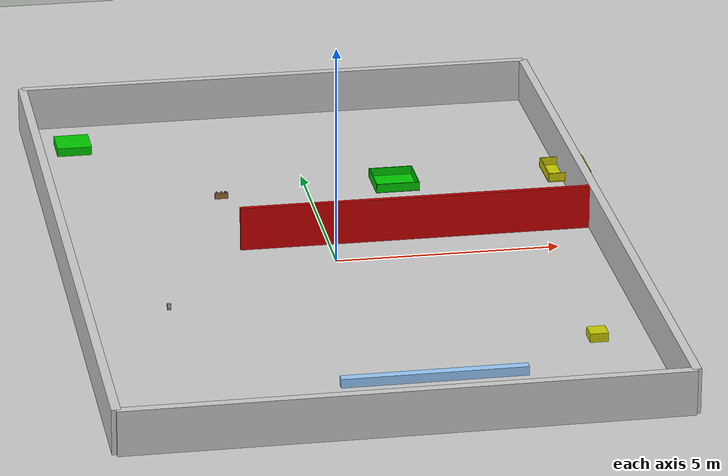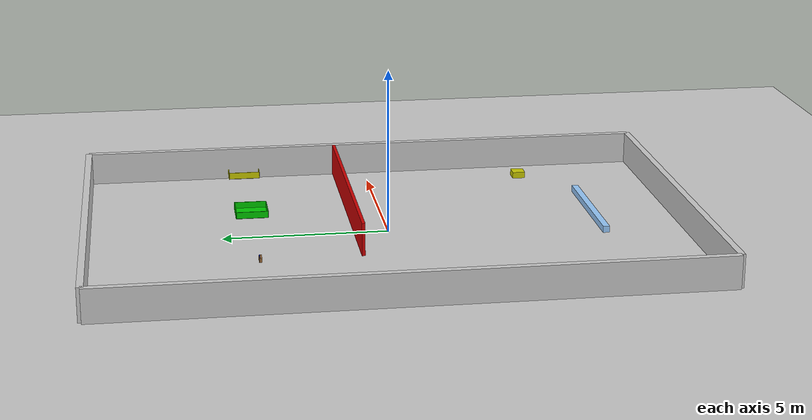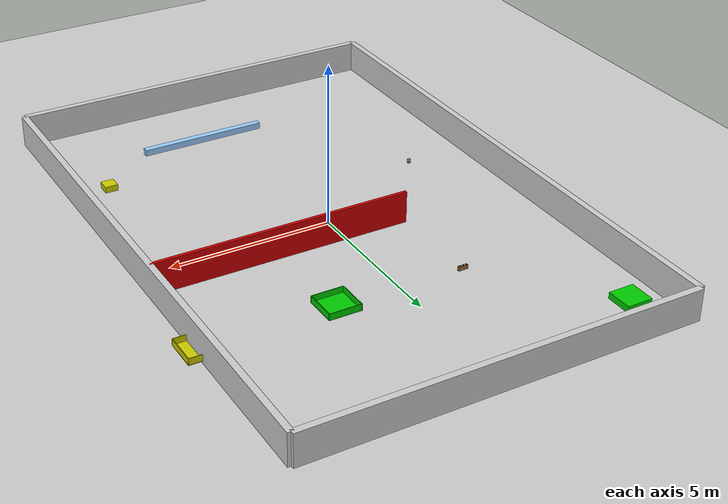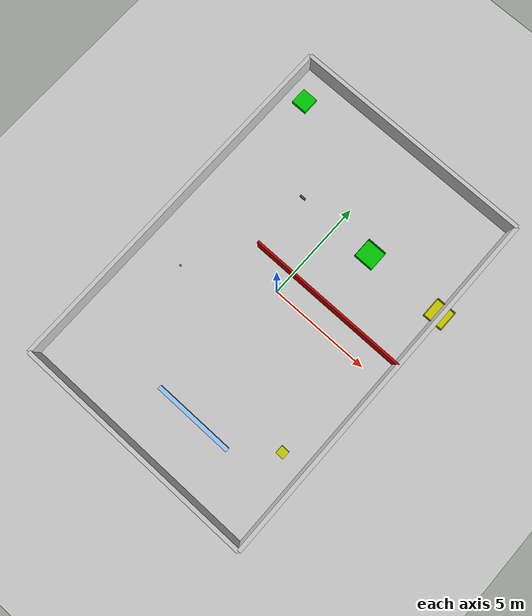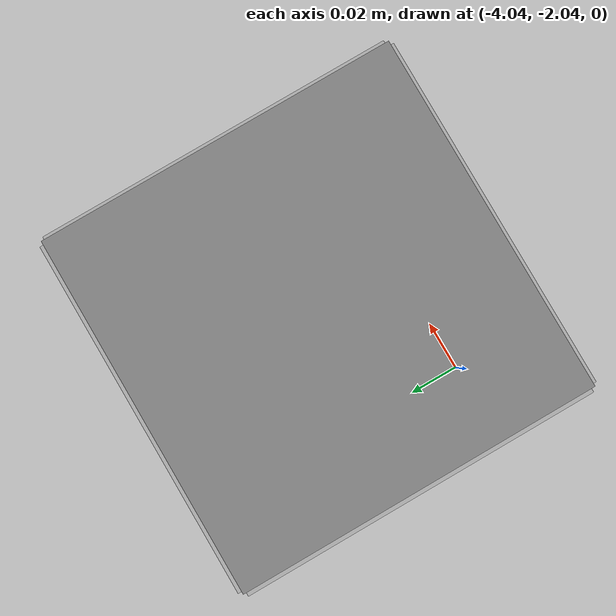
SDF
<?xml version="1.0" ?>
<sdf version="1.6">
  <world name="lab_world">
    <physics type="ode">
      <max_step_size>0.001</max_step_size>
      <real_time_factor>1</real_time_factor>
      <real_time_update_rate>1000</real_time_update_rate>
      <ode>
        <solver>
          <type>quick</type>
          <iters>200</iters>
          <sor>1.3</sor>
        </solver>
      </ode>
    </physics>
    <plugin name="gazebo_ros_state" filename="libgazebo_ros_state.so">
      <ros>
        <namespace>/</namespace>
      </ros>
      <update_rate>50.0</update_rate>
    </plugin>
    <include>
      <uri>model://ground_plane</uri>
    </include>
    <include>
      <uri>model://sun</uri>
    </include>
    <scene>
      <ambient>0.4 0.4 0.4 1</ambient>
      <background>0.7 0.7 0.7 1</background>
      <shadows>true</shadows>
    </scene>
    <model name="wall_north">
      <static>true</static>
      <pose>0 9 0.5 0 0 0</pose>
      <link name="link">
        <collision name="collision">
          <geometry><box><size>12 0.2 1</size></box></geometry>
        </collision>
        <visual name="visual">
          <geometry><box><size>12 0.2 1</size></box></geometry>
          <material>
            <ambient>0.8 0.8 0.8 1</ambient>
            <diffuse>0.8 0.8 0.8 1</diffuse>
            <specular>0.1 0.1 0.1 1</specular>
          </material>
        </visual>
      </link>
    </model>
    <model name="wall_south">
      <static>true</static>
      <pose>0 -9 0.5 0 0 0</pose>
      <link name="link">
        <collision name="collision">
          <geometry><box><size>12 0.2 1</size></box></geometry>
        </collision>
        <visual name="visual">
          <geometry><box><size>12 0.2 1</size></box></geometry>
          <material>
            <ambient>0.8 0.8 0.8 1</ambient>
            <diffuse>0.8 0.8 0.8 1</diffuse>
            <specular>0.1 0.1 0.1 1</specular>
          </material>
        </visual>
      </link>
    </model>

    <model name="green_station">
      <static>true</static>
      <pose>2.0 4.0 0.1 0 0 0</pose>
      <link name="base">
        <visual name="v_floor"><pose>0 0 0 0 0 0</pose><geometry><box><size>1.0 1.0 0.02</size></box></geometry><material><ambient>0 0.8 0 1</ambient><diffuse>0 0.8 0 1</diffuse></material></visual>
        <collision name="c_floor"><pose>0 0 0 0 0 0</pose><geometry><box><size>1.0 1.0 0.02</size></box></geometry></collision>
        <visual name="v_n"><pose>0 0.49 0.1 0 0 0</pose><geometry><box><size>1.0 0.02 0.2</size></box></geometry><material><ambient>0 0.8 0 1</ambient><diffuse>0 0.8 0 1</diffuse></material></visual>
        <collision name="c_n"><pose>0 0.49 0.1 0 0 0</pose><geometry><box><size>1.0 0.02 0.2</size></box></geometry></collision>
        <visual name="v_s"><pose>0 -0.49 0.1 0 0 0</pose><geometry><box><size>1.0 0.02 0.2</size></box></geometry><material><ambient>0 0.8 0 1</ambient><diffuse>0 0.8 0 1</diffuse></material></visual>
        <collision name="c_s"><pose>0 -0.49 0.1 0 0 0</pose><geometry><box><size>1.0 0.02 0.2</size></box></geometry></collision>
        <visual name="v_e"><pose>0.49 0 0.1 0 0 0</pose><geometry><box><size>0.02 1.0 0.2</size></box></geometry><material><ambient>0 0.8 0 1</ambient><diffuse>0 0.8 0 1</diffuse></material></visual>
        <collision name="c_e"><pose>0.49 0 0.1 0 0 0</pose><geometry><box><size>0.02 1.0 0.2</size></box></geometry></collision>
        <visual name="v_w"><pose>-0.49 0 0.1 0 0 0</pose><geometry><box><size>0.02 1.0 0.2</size></box></geometry><material><ambient>0 0.8 0 1</ambient><diffuse>0 0.8 0 1</diffuse></material></visual>
        <collision name="c_w"><pose>-0.49 0 0.1 0 0 0</pose><geometry><box><size>0.02 1.0 0.2</size></box></geometry></collision>
      </link>
    </model>

    <model name="yellow_station">
      <static>true</static>
      <pose>6.0 4.0 0.1 0 0 0</pose>
      <link name="base">
        <visual name="v_floor"><pose>0 0 0 0 0 0</pose><geometry><box><size>1.0 1.0 0.02</size></box></geometry><material><ambient>0.8 0.8 0 1</ambient><diffuse>0.8 0.8 0 1</diffuse></material></visual>
        <collision name="c_floor"><pose>0 0 0 0 0 0</pose><geometry><box><size>1.0 1.0 0.02</size></box></geometry></collision>
        <visual name="v_n"><pose>0 0.49 0.1 0 0 0</pose><geometry><box><size>1.0 0.02 0.2</size></box></geometry><material><ambient>0.8 0.8 0 1</ambient><diffuse>0.8 0.8 0 1</diffuse></material></visual>
        <collision name="c_n"><pose>0 0.49 0.1 0 0 0</pose><geometry><box><size>1.0 0.02 0.2</size></box></geometry></collision>
        <visual name="v_s"><pose>0 -0.49 0.1 0 0 0</pose><geometry><box><size>1.0 0.02 0.2</size></box></geometry><material><ambient>0.8 0.8 0 1</ambient><diffuse>0.8 0.8 0 1</diffuse></material></visual>
        <collision name="c_s"><pose>0 -0.49 0.1 0 0 0</pose><geometry><box><size>1.0 0.02 0.2</size></box></geometry></collision>
        <visual name="v_e"><pose>0.49 0 0.1 0 0 0</pose><geometry><box><size>0.02 1.0 0.2</size></box></geometry><material><ambient>0.8 0.8 0 1</ambient><diffuse>0.8 0.8 0 1</diffuse></material></visual>
        <collision name="c_e"><pose>0.49 0 0.1 0 0 0</pose><geometry><box><size>0.02 1.0 0.2</size></box></geometry></collision>
        <visual name="v_w"><pose>-0.49 0 0.1 0 0 0</pose><geometry><box><size>0.02 1.0 0.2</size></box></geometry><material><ambient>0.8 0.8 0 1</ambient><diffuse>0.8 0.8 0 1</diffuse></material></visual>
        <collision name="c_w"><pose>-0.49 0 0.1 0 0 0</pose><geometry><box><size>0.02 1.0 0.2</size></box></geometry></collision>
      </link>
    </model>

    <model name="wall_east">
      <static>true</static>
      <pose>6 0 0.5 0 0 0</pose>
      <link name="link">
        <collision name="collision">
          <geometry><box><size>0.2 18 1</size></box></geometry>
        </collision>
        <visual name="visual">
          <geometry><box><size>0.2 18 1</size></box></geometry>
          <material>
            <ambient>0.8 0.8 0.8 1</ambient>
            <diffuse>0.8 0.8 0.8 1</diffuse>
            <specular>0.1 0.1 0.1 1</specular>
          </material>
        </visual>
      </link>
    </model>
    <model name="wall_west">
      <static>true</static>
      <pose>-6 0 0.5 0 0 0</pose>
      <link name="link">
        <collision name="collision">
          <geometry><box><size>0.2 18 1</size></box></geometry>
        </collision>
        <visual name="visual">
          <geometry><box><size>0.2 18 1</size></box></geometry>
          <material>
            <ambient>0.8 0.8 0.8 1</ambient>
            <diffuse>0.8 0.8 0.8 1</diffuse>
            <specular>0.1 0.1 0.1 1</specular>
          </material>
        </visual>
      </link>
    </model>
    <model name="divider_partition_red">
      <static>true</static>
      <pose>2 1 0.5 0 0 0</pose>
      <link name="link">
        <collision name="collision">
          <geometry><box><size>8 0.1 1</size></box></geometry>
        </collision>
        <visual name="visual">
          <geometry><box><size>8 0.1 1</size></box></geometry>
          <material>
            <ambient>1 0 0 1</ambient>
            <diffuse>0.8 0 0 1</diffuse>
            <specular>0.1 0 0 1</specular>
          </material>
        </visual>
      </link>
    </model>
    <model name="station_a_assembly">
      <static>true</static>
      <pose>-5.0 7.5 0.1 0 0 0</pose>
      <link name="link">
        <collision name="collision">
          <geometry><box><size>0.8 0.8 0.2</size></box></geometry>
        </collision>
        <visual name="visual">
          <geometry><box><size>0.8 0.8 0.2</size></box></geometry>
          <material>
            <ambient>0 1 0 1</ambient>
            <diffuse>0 0.8 0 1</diffuse>
            <specular>0 0.1 0 1</specular>
          </material>
        </visual>
      </link>
    </model>
    <model name="storage_parts">
      <static>true</static>
      <pose>4.8 -5 0.1 0 0 0</pose>
      <link name="link">
        <collision name="collision">
          <geometry><box><size>0.4 0.4 0.2</size></box></geometry>
        </collision>
        <visual name="visual">
          <geometry><box><size>0.4 0.4 0.2</size></box></geometry>
          <material>
            <ambient>1 1 0 1</ambient>
            <diffuse>0.8 0.8 0 1</diffuse>
            <specular>0.1 0.1 0 1</specular>
          </material>
        </visual>
      </link>
    </model>
    <model name="counter_light_blue">
      <static>true</static>
      <pose>1 -6.5 0.1 0 0 0</pose>
      <link name="link">
        <collision name="collision">
          <geometry><box><size>4 0.2 0.2</size></box></geometry>
        </collision>
        <visual name="visual">
          <geometry><box><size>4 0.2 0.2</size></box></geometry>
          <material>
            <ambient>0.6 0.8 1 1</ambient>
            <diffuse>0.6 0.8 1 1</diffuse>
            <specular>0.1 0.1 0.1 1</specular>
          </material>
        </visual>
      </link>
    </model>
    <model name='pickup_table'>
      <static>1</static>
      <pose>-2 4 0.065 0 0 0</pose>
      <link name='link'>
        <collision name='col'>
          <geometry><box><size>0.3 0.08 0.13</size></box></geometry>
        </collision>
        <visual name='vis'>
          <geometry><box><size>0.3 0.08 0.13</size></box></geometry>
          <material>
            <ambient>0.6 0.4 0.2 1</ambient>
            <diffuse>0.6 0.4 0.2 1</diffuse>
          </material>
        </visual>
        <self_collide>0</self_collide>
      </link>
    </model>

    <model name='place_table'>
      <static>1</static>
      <pose>-4 -2 0 0 0 0</pose>
      <link name='body'>
        <pose>0 0 0.065 0 0 0</pose>
        <collision name='col'>
          <geometry><box><size>0.08 0.08 0.13</size></box></geometry>
        </collision>
        <visual name='vis'>
          <geometry><box><size>0.08 0.08 0.13</size></box></geometry>
          <material>
            <ambient>0.55 0.55 0.55 1</ambient>
            <diffuse>0.55 0.55 0.55 1</diffuse>
            <specular>0.1 0.1 0.1 1</specular>
          </material>
        </visual>
        <self_collide>0</self_collide>
      </link>
      <link name='tag_north'>
        <pose>0 0.041 0.0875 0 0 0</pose>
        <visual name='vis'>
          <geometry><box><size>0.08 0.001 0.08</size></box></geometry>
          <material>
            <script>
              <uri>model://limo_car/media/materials/scripts/apriltag.material</uri>
              <uri>model://limo_car/media/materials/textures/</uri>
              <name>AprilTag_0</name>
            </script>
          </material>
        </visual>
        <self_collide>0</self_collide>
      </link>
      <link name='tag_south'>
        <pose>0 -0.041 0.0875 0 0 3.14159</pose>
        <visual name='vis'>
          <geometry><box><size>0.08 0.001 0.08</size></box></geometry>
          <material>
            <script>
              <uri>model://limo_car/media/materials/scripts/apriltag.material</uri>
              <uri>model://limo_car/media/materials/textures/</uri>
              <name>AprilTag_1</name>
            </script>
          </material>
        </visual>
        <self_collide>0</self_collide>
      </link>
      <link name='tag_east'>
        <pose>0.041 0 0.0875 0 0 -1.5708</pose>
        <visual name='vis'>
          <geometry><box><size>0.08 0.001 0.08</size></box></geometry>
          <material>
            <script>
              <uri>model://limo_car/media/materials/scripts/apriltag.material</uri>
              <uri>model://limo_car/media/materials/textures/</uri>
              <name>AprilTag_2</name>
            </script>
          </material>
        </visual>
        <self_collide>0</self_collide>
      </link>
      <link name='tag_west'>
        <pose>-0.041 0 0.0875 0 0 1.5708</pose>
        <visual name='vis'>
          <geometry><box><size>0.08 0.001 0.08</size></box></geometry>
          <material>
            <script>
              <uri>model://limo_car/media/materials/scripts/apriltag.material</uri>
              <uri>model://limo_car/media/materials/textures/</uri>
              <name>AprilTag_3</name>
            </script>
          </material>
        </visual>
        <self_collide>0</self_collide>
      </link>
    </model>

    <model name='stack_box_0'>
      <pose>-2.00 4.02 0.14235 0 0 0</pose>
      <link name='link'>
        <inertial>
          <mass>0.04</mass>
          <inertia>
            <ixx>4.067e-06</ixx><ixy>0</ixy><ixz>0</ixz>
            <iyy>4.067e-06</iyy><iyz>0</iyz>
            <izz>4.067e-06</izz>
          </inertia>
        </inertial>
        <collision name='col'>
          <geometry><box><size>0.0247 0.0247 0.0247</size></box></geometry>
          <surface>
            <friction>
              <ode><mu>1.0</mu><mu2>1.0</mu2></ode>
            </friction>
            <contact>
              <ode>
                <kp>1e6</kp>
                <kd>1.0</kd>
                <max_vel>0.01</max_vel>
                <min_depth>0.001</min_depth>
              </ode>
            </contact>
          </surface>
        </collision>
        <visual name='vis'>
          <geometry><box><size>0.0247 0.0247 0.0247</size></box></geometry>
          <material>
            <ambient>0 0 1 1</ambient>
            <diffuse>0 0.2 1 1</diffuse>
          </material>
        </visual>
        <self_collide>0</self_collide>
      </link>
    </model>

    <model name='stack_box_1'>
      <pose>-2.10 4.02 0.14235 0 0 0</pose>
      <link name='link'>
        <inertial>
          <mass>0.04</mass>
          <inertia>
            <ixx>4.067e-06</ixx><ixy>0</ixy><ixz>0</ixz>
            <iyy>4.067e-06</iyy><iyz>0</iyz>
            <izz>4.067e-06</izz>
          </inertia>
        </inertial>
        <collision name='col'>
          <geometry><box><size>0.0247 0.0247 0.0247</size></box></geometry>
          <surface>
            <friction>
              <ode><mu>1.0</mu><mu2>1.0</mu2></ode>
            </friction>
            <contact>
              <ode>
                <kp>1e6</kp>
                <kd>1.0</kd>
                <max_vel>0.01</max_vel>
                <min_depth>0.001</min_depth>
              </ode>
            </contact>
          </surface>
        </collision>
        <visual name='vis'>
          <geometry><box><size>0.0247 0.0247 0.0247</size></box></geometry>
          <material>
            <ambient>0 0 1 1</ambient>
            <diffuse>0 0.2 1 1</diffuse>
          </material>
        </visual>
        <self_collide>0</self_collide>
      </link>
    </model>

    <model name='stack_box_2'>
      <pose>-1.90 4.02 0.14235 0 0 0</pose>
      <link name='link'>
        <inertial>
          <mass>0.04</mass>
          <inertia>
            <ixx>4.067e-06</ixx><ixy>0</ixy><ixz>0</ixz>
            <iyy>4.067e-06</iyy><iyz>0</iyz>
            <izz>4.067e-06</izz>
          </inertia>
        </inertial>
        <collision name='col'>
          <geometry><box><size>0.0247 0.0247 0.0247</size></box></geometry>
          <surface>
            <friction>
              <ode><mu>1.0</mu><mu2>1.0</mu2></ode>
            </friction>
            <contact>
              <ode>
                <kp>1e6</kp>
                <kd>1.0</kd>
                <max_vel>0.01</max_vel>
                <min_depth>0.001</min_depth>
              </ode>
            </contact>
          </surface>
        </collision>
        <visual name='vis'>
          <geometry><box><size>0.0247 0.0247 0.0247</size></box></geometry>
          <material>
            <ambient>0 0 1 1</ambient>
            <diffuse>0 0.2 1 1</diffuse>
          </material>
        </visual>
        <self_collide>0</self_collide>
      </link>
    </model>

    <gui fullscreen="0">
      <camera name="user_camera">
        <pose>-5.0 7.0 6.0 0 0.8 -1.57</pose>
        <view_controller>orbit</view_controller>
        <projection_type>perspective</projection_type>
      </camera>
    </gui>
  </world>
</sdf>
